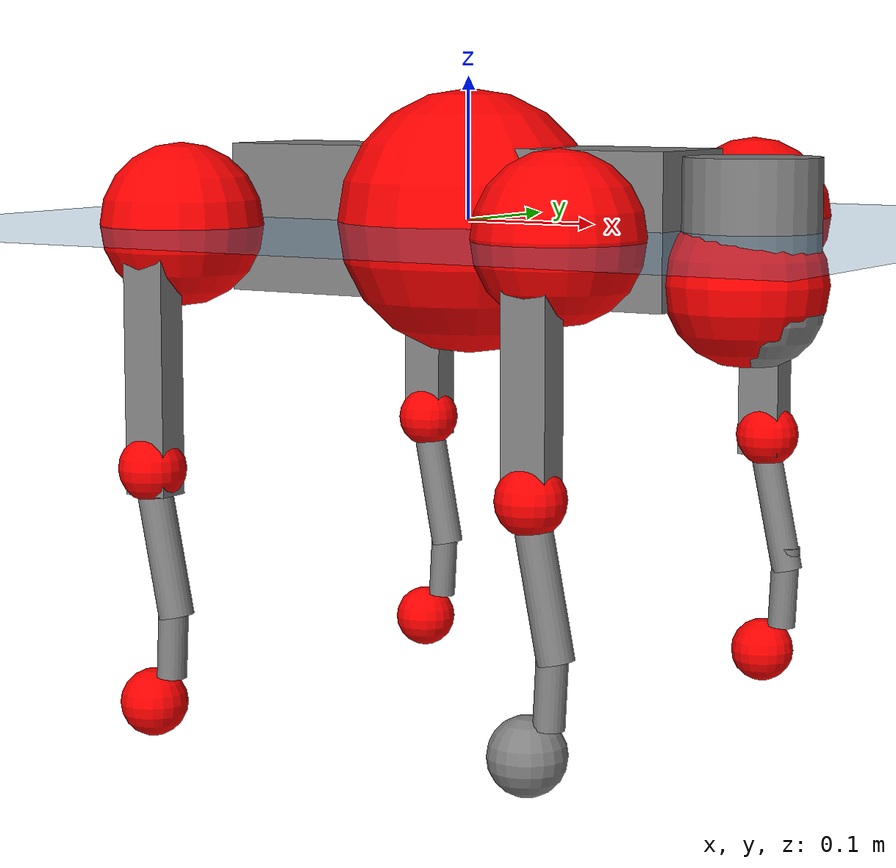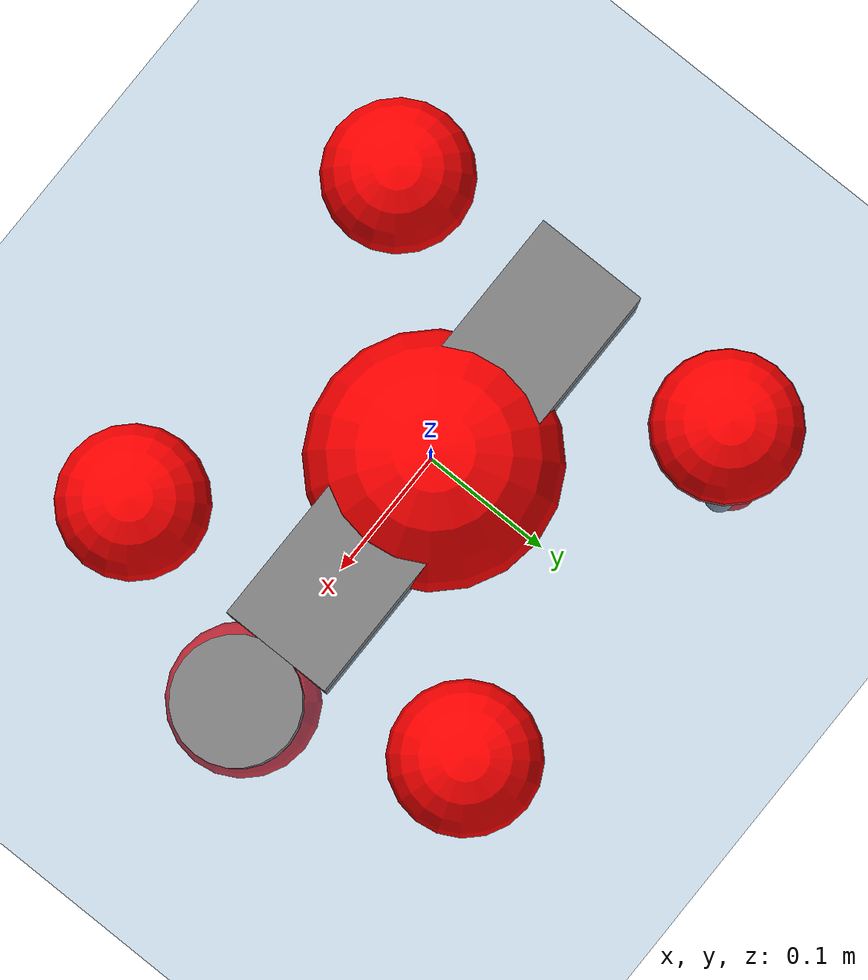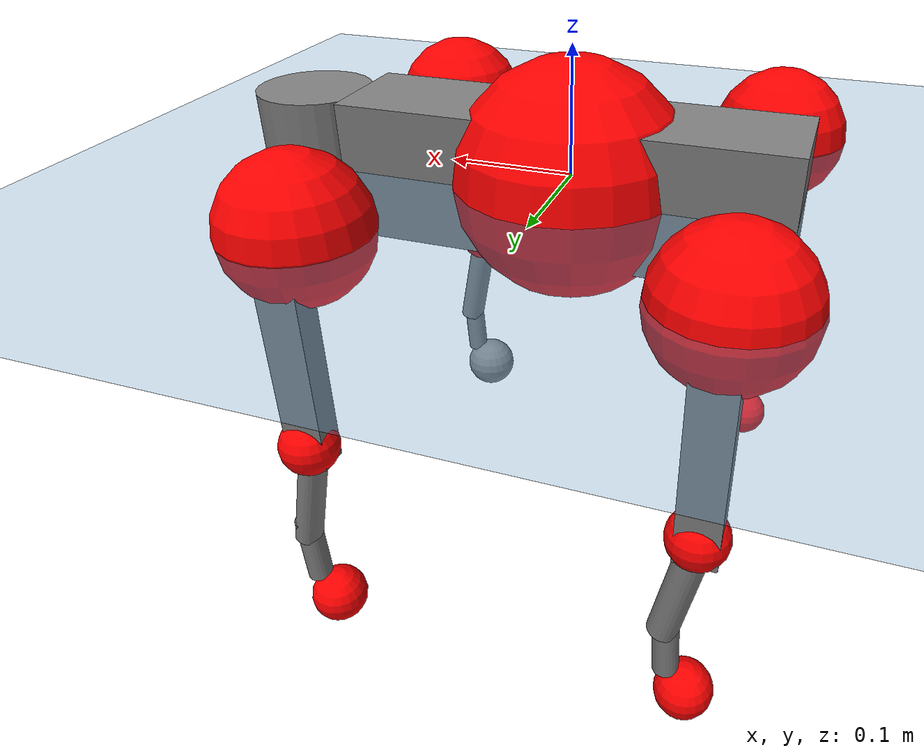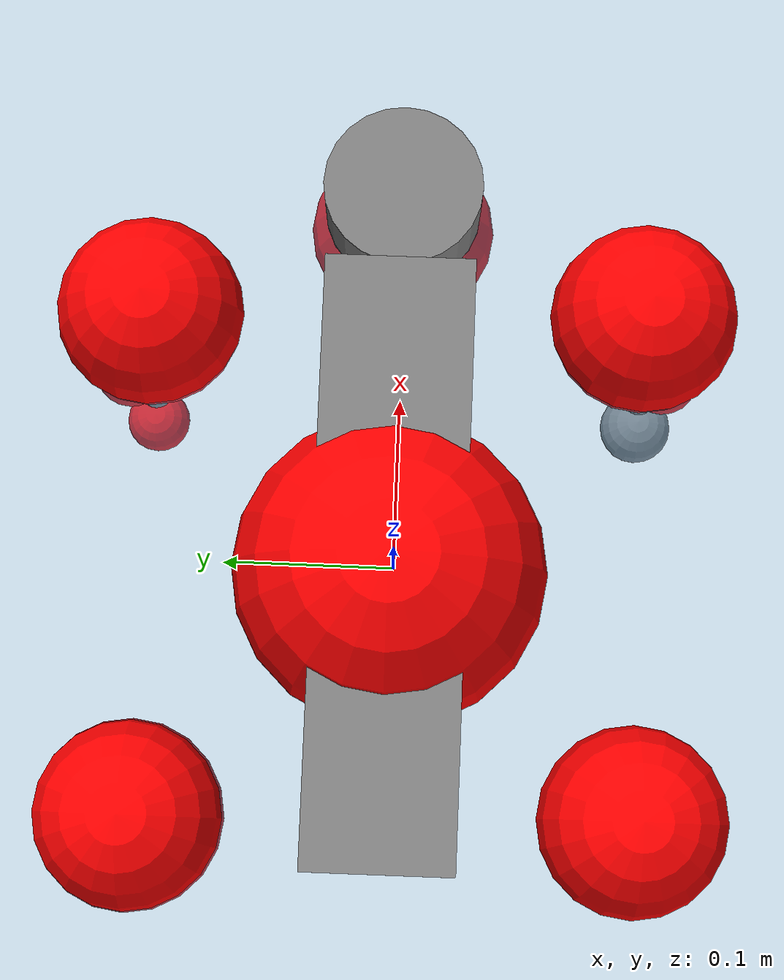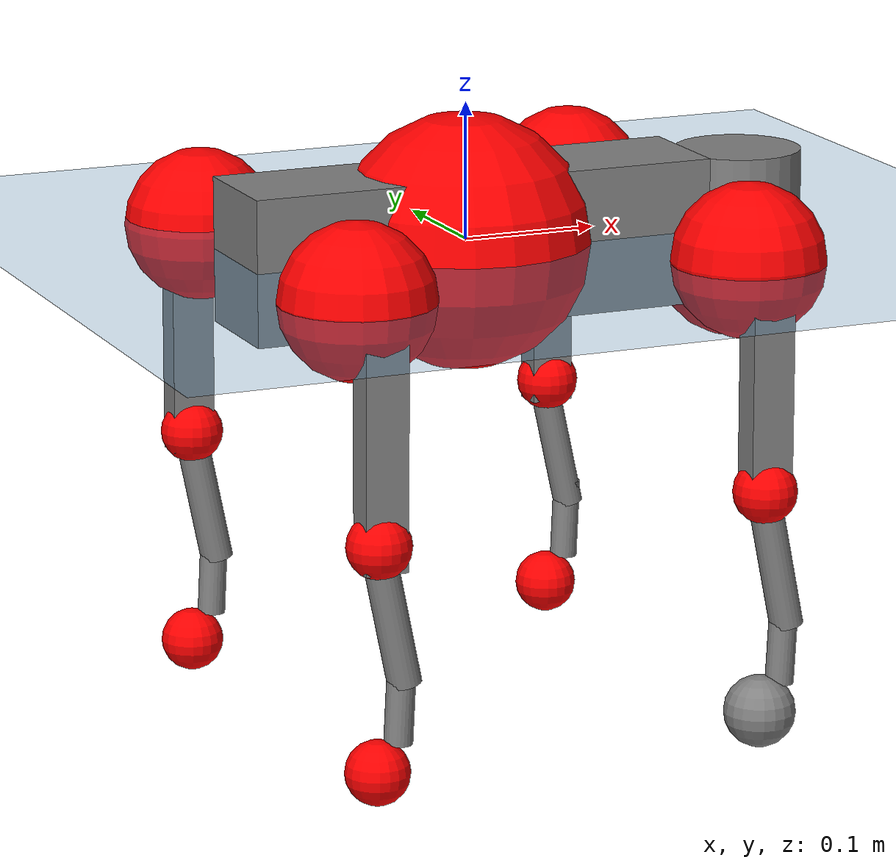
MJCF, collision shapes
<mujoco model="go2">
  <compiler angle="radian" assetdir="assets" balanceinertia="true" inertiafromgeom="false"/>

  <option timestep="0.005" density="1.2" viscosity="2e-05"/>

  <size nkey="1"/>

  <visual>
    <quality shadowsize="8192"/>
    <map shadowclip="0.5"/>
  </visual>

  <default>
    <default class="/">
      <geom contype="0" conaffinity="0" group="1" solref="-1000 -80"/>
      <site size="0.01 0.005 0.005" group="5"/>
      <general forcelimited="true" biastype="affine" gainprm="20" biasprm="0 -20 -0.5"/>
      <default class="go2">
        <joint armature="0.01" damping="0.01" frictionloss="0.2"/>
        <geom condim="1" margin="0.001"/>
        <default class="visual">
          <geom type="mesh" group="2"/>
        </default>
        <default class="collision">
          <geom group="3"/>
          <default class="foot">
            <geom size="0.022 0 0" condim="6" priority="1" friction="0.8 0.02 0.01" solimp="0.015 1 0.022"/>
          </default>
        </default>
        <default class="reward_collision_sphere">
          <geom group="5" rgba="1 0 0 1"/>
        </default>
      </default>
    </default>
  </default>

  <asset>
    <texture type="skybox" colorspace="auto" name="//unnamed_texture_0" builtin="gradient" rgb1="0.95 0.95 0.95" rgb2="0.95 0.95 0.95" width="100" height="600"/>
    <texture type="2d" colorspace="auto" name="texplane" builtin="checker" rgb1="0.345 0.575 0.748" rgb2="0.345 0.575 0.748" markrgb="1 1 1" width="512" height="512"/>
    <material name="MatPlane" class="/" texture="texplane" texuniform="true" texrepeat="2 2" specular="0.9"/>
    <material name="metal" class="/" rgba="0.9 0.95 0.95 1"/>
    <material name="black" class="/" rgba="0 0 0 1"/>
    <material name="white" class="/"/>
    <material name="gray" class="/" rgba="0.671705 0.692426 0.77427 1"/>
    <mesh name="base_0" class="/" file="base_0.obj"/>
    <mesh name="base_1" class="/" file="base_1.obj"/>
    <mesh name="base_2" class="/" file="base_2.obj"/>
    <mesh name="base_3" class="/" file="base_3.obj"/>
    <mesh name="base_4" class="/" file="base_4.obj"/>
    <mesh name="hip_0" class="/" file="hip_0.obj"/>
    <mesh name="hip_1" class="/" file="hip_1.obj"/>
    <mesh name="thigh_0" class="/" file="thigh_0.obj"/>
    <mesh name="thigh_1" class="/" file="thigh_1.obj"/>
    <mesh name="thigh_mirror_0" class="/" file="thigh_mirror_0.obj"/>
    <mesh name="thigh_mirror_1" class="/" file="thigh_mirror_1.obj"/>
    <mesh name="calf_0" class="/" file="calf_0.obj"/>
    <mesh name="calf_1" class="/" file="calf_1.obj"/>
    <mesh name="calf_mirror_0" class="/" file="calf_mirror_0.obj"/>
    <mesh name="calf_mirror_1" class="/" file="calf_mirror_1.obj"/>
    <mesh name="foot" class="/" file="foot.obj"/>
  </asset>

  <worldbody>
    <geom name="floor" class="/" size="100 100 0.125" type="plane" group="0" material="MatPlane"/>
    <light name="toplight_shadow" class="/" pos="0 0 5" dir="0.0990148 0.0990148 -0.990148" type="directional" ambient="0.04 0.04 0.04" diffuse="0.55 0.55 0.55" specular="0.12 0.12 0.12"/>
    <light name="toplight_fill" class="/" pos="0 0 5" dir="0.0990148 0.0990148 -0.990148" type="directional" castshadow="false" ambient="0.04 0.04 0.04" diffuse="0.3 0.3 0.3" specular="0.08 0.08 0.08"/>
    <body name="trunk" childclass="go2" pos="-0.000625703 0.00239494 -0.00123368" quat="0.999999 -0.00120897 7.45487e-05 0.000184276">
      <inertial pos="0.0172654 0.00707963 -0.00697952" quat="0.00296761 0.710346 -0.00192079 0.703844" mass="5.78527" diaginertia="0.033647 0.334233 0.00661168"/>
      <joint name="//unnamed_joint_0" type="free" armature="0" damping="0" frictionloss="0"/>
      <geom name="//unnamed_geom_1" class="visual" material="black" mesh="base_0"/>
      <geom name="//unnamed_geom_2" class="visual" material="black" mesh="base_1"/>
      <geom name="//unnamed_geom_3" class="visual" material="black" mesh="base_2"/>
      <geom name="//unnamed_geom_4" class="visual" material="white" mesh="base_3"/>
      <geom name="//unnamed_geom_5" class="visual" material="gray" mesh="base_4"/>
      <geom name="trunk_1" class="collision" size="0.175109 0.0435214 0.0530635" type="box"/>
      <geom name="trunk_2" class="collision" size="0.0465469 0.0418922" pos="0.218778 0 0.00765789" type="cylinder"/>
      <geom name="trunk_3" class="collision" size="0.0437541" pos="0.22492 0 -0.0459473"/>
      <geom name="//unnamed_geom_9" class="reward_collision_sphere" size="0.0930938"/>
      <geom name="//unnamed_geom_10" class="reward_collision_sphere" size="0.0558563" pos="0.21494 0 -0.0344605"/>
      <site name="imu" pos="-0.0305857 0.00901471 0.0413578" size="0.00930938"/>
      <camera name="track" pos="0 -2.51876 0" quat="0.707107 0.707107 0 0" mode="trackcom"/>
      <camera name="ego_camera" pos="0.239505 0 0.0344605" quat="-0.5 -0.5 0.5 0.5"/>
      <body name="FL_hip" pos="0.149622 0.0601421 0.00196044" quat="0.999999 0.000705939 -0.000725987 0.000326014">
        <inertial pos="-0.00477611 0.00686817 0.00198537" quat="0.508761 0.504591 0.522099 0.462561" mass="0.568345" diaginertia="0.000235839 0.00194149 0.000126943"/>
        <joint name="FL_hip_joint" pos="0 0 0" axis="0.99997 -0.00563365 0.00528263" range="-1.03082 1.0033" armature="0.0088237" damping="0.0242414" frictionloss="0.185001"/>
        <geom name="//unnamed_geom_11" class="visual" material="metal" mesh="hip_0"/>
        <geom name="//unnamed_geom_12" class="visual" material="gray" mesh="hip_1"/>
        <geom name="//unnamed_geom_13" class="collision" size="0.0428231 0.0186188" pos="0 0.100751 0" quat="0.707107 0.707107 0 0" type="cylinder"/>
        <geom name="//unnamed_geom_14" class="reward_collision_sphere" size="0.0558563" pos="0 0.0881567 0"/>
        <body name="FL_thigh" pos="-0.00405368 0.119409 0.00163404" quat="0.999993 -0.00140418 -0.00115148 0.00328888">
          <inertial pos="-0.00462567 -0.0356287 -0.0271411" quat="0.82915 0.0831286 -0.019584 0.552464" mass="0.920799" diaginertia="0.00169348 0.0169387 0.000231671"/>
          <joint name="FL_thigh_joint" pos="0 0 0" axis="-0.0111024 0.999912 -0.00722637" range="-1.51929 3.61195" armature="0.00607111" damping="0.0231425" frictionloss="0.197238"/>
          <geom name="//unnamed_geom_15" class="visual" material="metal" mesh="thigh_0"/>
          <geom name="//unnamed_geom_16" class="visual" material="gray" mesh="thigh_1"/>
          <geom name="//unnamed_geom_17" class="collision" size="0.0991449 0.011404 0.0158259" pos="0 0 -0.0815565" quat="0.707107 0 0.707107 0" type="box"/>
          <body name="FL_calf" pos="0.00171812 0.00213363 -0.166593" quat="1 9.08478e-05 0.000528902 -0.000804097">
            <inertial pos="0.0101382 0.00111056 -0.10418" quat="0.708766 -0.00109354 -0.00561215 0.70542" mass="0.201851" diaginertia="0.000403976 0.00439201 1.39465e-05"/>
            <joint name="FL_calf_joint" pos="0 0 0" axis="-0.000523773 1 0.000529377" range="-2.8742 -0.917766" armature="0.00987359" damping="0.0304702" frictionloss="0.19621"/>
            <geom name="//unnamed_geom_18" class="visual" material="gray" mesh="calf_0"/>
            <geom name="//unnamed_geom_19" class="visual" material="black" mesh="calf_1"/>
            <geom name="FL_calf0" class="collision" size="0.0111713 0.0558563" pos="0.00614115 0 -0.0459473" quat="0.994493 0 -0.104807 0" type="cylinder"/>
            <geom name="//unnamed_geom_21" class="collision" size="0.0102403 0.0302555" pos="0.0153529 0 -0.113337" quat="0.999688 0 0.0249974 0" type="cylinder"/>
            <geom name="//unnamed_geom_22" class="visual" pos="0 0 -0.163113" quat="1 0 0 0" material="black" mesh="foot"/>
            <geom name="FL_foot" class="foot" size="0.0206919" pos="-0.00153529 0 -0.163113"/>
            <geom name="//unnamed_geom_24" class="reward_collision_sphere" size="0.0232735"/>
            <geom name="//unnamed_geom_25" class="reward_collision_sphere" size="0.0232735" pos="-0.00153529 0 -0.163113"/>
            <site name="FL_foot" class="foot" pos="-0.00153529 0 -0.163113" size="0.00930938"/>
          </body>
        </body>
      </body>
      <body name="FR_hip" pos="0.155662 -0.0578398 0.0021935" quat="0.999999 0.000325139 -0.000102101 0.0012122">
        <inertial pos="-0.00620098 -0.00178341 -0.000759081" quat="0.509815 0.504299 0.510822 0.474165" mass="0.548569" diaginertia="0.000246557 0.00188565 0.000129084"/>
        <joint name="FR_hip_joint" pos="0 0 0" axis="0.999971 -0.000683534 0.00754726" stiffness="0.0410945" range="-1.00387 0.95169" armature="0.00927382" damping="0.027556" frictionloss="0.199819"/>
        <geom name="//unnamed_geom_26" class="visual" pos="0 4.29998e-09 1.84435e-07" quat="4.63268e-05 1 0 0" material="metal" mesh="hip_0"/>
        <geom name="//unnamed_geom_27" class="visual" pos="0 6.97078e-09 -4.56178e-07" quat="4.63268e-05 1 0 0" material="gray" mesh="hip_1"/>
        <geom name="//unnamed_geom_28" class="collision" size="0.0428231 0.0186188" pos="0 -0.100751 0" quat="0.707107 0.707107 0 0" type="cylinder"/>
        <geom name="//unnamed_geom_29" class="reward_collision_sphere" size="0.0558563" pos="0 -0.0881567 0"/>
        <body name="FR_thigh" pos="-0.00053814 -0.120013 0.00691427" quat="1 -0.000224242 -0.000154295 0.000203324">
          <inertial pos="-0.0035877 0.0302192 -0.0311384" quat="0.551349 -0.0238663 0.0861694 0.829469" mass="0.954446" diaginertia="0.00164861 0.0187201 0.000234"/>
          <joint name="FR_thigh_joint" pos="0 0 0" axis="0.00193148 -0.999996 -0.0019338" range="-3.51814 1.58632" armature="0.0116152" damping="0" frictionloss="0.203441"/>
          <geom name="//unnamed_geom_30" class="visual" material="metal" mesh="thigh_mirror_0"/>
          <geom name="//unnamed_geom_31" class="visual" material="gray" mesh="thigh_mirror_1"/>
          <geom name="//unnamed_geom_32" class="collision" size="0.0991449 0.011404 0.0158259" pos="0 0 -0.0815565" quat="0.707107 0 0.707107 0" type="box"/>
          <body name="FR_calf" pos="-0.000105751 -0.00038626 -0.168148" quat="0.999999 -5.62033e-05 0.000925705 -0.000507387">
            <inertial pos="0.00673747 -0.0014925 -0.107621" quat="0.703656 -0.00437515 0.000598443 0.710528" mass="0.176874" diaginertia="0.000358352 0.00405979 1.29726e-05"/>
            <joint name="FR_calf_joint" pos="0 0 0" axis="-0.0113977 -0.999876 0.0108747" range="0.860075 2.75242" armature="0.00834749" damping="0.0386253" frictionloss="0.179713"/>
            <geom name="//unnamed_geom_33" class="visual" material="gray" mesh="calf_mirror_0"/>
            <geom name="//unnamed_geom_34" class="visual" material="black" mesh="calf_mirror_1"/>
            <geom name="FR_calf0" class="collision" size="0.0121022 0.0558563" pos="0.00767643 0 -0.0459473" quat="0.995004 0 -0.0998334 0" type="cylinder"/>
            <geom name="//unnamed_geom_36" class="collision" size="0.0102403 0.0302555" pos="0.0153529 0 -0.113337" quat="0.999688 0 0.0249974 0" type="cylinder"/>
            <geom name="//unnamed_geom_37" class="visual" pos="0 0 -0.163113" quat="1 0 0 0" material="black" mesh="foot"/>
            <geom name="FR_foot" class="foot" size="0.0260586" pos="-0.00153529 0 -0.163113"/>
            <geom name="//unnamed_geom_39" class="reward_collision_sphere" size="0.0232735"/>
            <geom name="//unnamed_geom_40" class="reward_collision_sphere" size="0.0232735" pos="-0.00153529 0 -0.163113"/>
            <site name="FR_foot" class="foot" pos="-0.00153529 0 -0.163113" size="0.00930938"/>
          </body>
        </body>
      </body>
      <body name="RL_hip" pos="-0.148088 0.0576929 -0.00472782" quat="0.999999 0.000361225 0.000876787 -0.000534441">
        <inertial pos="0.00606195 0.0006493 -0.00192521" quat="0.51194 0.500245 0.491468 0.496116" mass="0.595955" diaginertia="0.000228109 0.00189011 0.000123606"/>
        <joint name="RL_hip_joint" pos="0 0 0" axis="-0.999969 0.00777002 -0.00108887" range="-1.14276 1.03044" armature="0.00843295" damping="0.00661994" frictionloss="0.152482"/>
        <geom name="//unnamed_geom_41" class="visual" pos="-1.61569e-11 0 -3.16711e-09" quat="4.63268e-05 0 1 0" material="metal" mesh="hip_0"/>
        <geom name="//unnamed_geom_42" class="visual" pos="-2.61922e-11 0 -2.80877e-09" quat="4.63268e-05 0 1 0" material="gray" mesh="hip_1"/>
        <geom name="//unnamed_geom_43" class="collision" size="0.0428231 0.0186188" pos="0 0.100751 0" quat="0.707107 0.707107 0 0" type="cylinder"/>
        <geom name="//unnamed_geom_44" class="reward_collision_sphere" size="0.0558563" pos="0 0.0881567 0"/>
        <body name="RL_thigh" pos="0.00086972 0.120234 0.000871613" quat="0.999995 -0.0021224 0.00213591 0.000489227">
          <inertial pos="-0.00271854 -0.0363209 -0.0242935" quat="0.821966 0.087811 -0.0320793 0.561811" mass="1.01658" diaginertia="0.00161755 0.0183186 0.000217425"/>
          <joint name="RL_thigh_joint" pos="0 0 0" axis="-0.0021212 0.99928 0.0378681" range="-0.570849 4.50608" armature="0.0082817" damping="0" frictionloss="0.197562"/>
          <geom name="//unnamed_geom_45" class="visual" material="metal" mesh="thigh_0"/>
          <geom name="//unnamed_geom_46" class="visual" material="gray" mesh="thigh_1"/>
          <geom name="//unnamed_geom_47" class="collision" size="0.0991449 0.011404 0.0158259" pos="0 0 -0.0815565" quat="0.707107 0 0.707107 0" type="box"/>
          <body name="RL_calf" pos="0.0010205 -0.00263207 -0.166622" quat="1 -0.000103854 0.000342941 0.000262613">
            <inertial pos="0.0057483 -0.00521597 -0.110454" quat="0.71089 0.0110942 -0.00493923 0.703199" mass="0.196921" diaginertia="0.000423292 0.0049543 1.50547e-05"/>
            <joint name="RL_calf_joint" pos="0 0 0" axis="0.00192737 0.999986 -0.00493287" range="-2.86545 -0.836055" armature="0.00581783" damping="0" frictionloss="0.205675"/>
            <geom name="//unnamed_geom_48" class="visual" material="gray" mesh="calf_0"/>
            <geom name="//unnamed_geom_49" class="visual" material="black" mesh="calf_1"/>
            <geom name="RL_calf0" class="collision" size="0.0121022 0.0558563" pos="0.00767643 0 -0.0459473" quat="0.995004 0 -0.0998334 0" type="cylinder"/>
            <geom name="//unnamed_geom_51" class="collision" size="0.0102403 0.0302555" pos="0.0153529 0 -0.113337" quat="0.999688 0 0.0249974 0" type="cylinder"/>
            <geom name="//unnamed_geom_52" class="visual" pos="0 0 -0.163113" quat="1 0 0 0" material="black" mesh="foot"/>
            <geom name="RL_foot" class="foot" size="0.0228865" pos="-0.00153529 0 -0.163113"/>
            <geom name="//unnamed_geom_54" class="reward_collision_sphere" size="0.0232735"/>
            <geom name="//unnamed_geom_55" class="reward_collision_sphere" size="0.0232735" pos="-0.00153529 0 -0.163113"/>
            <site name="RL_foot" class="foot" pos="-0.00153529 0 -0.163113" size="0.00930938"/>
          </body>
        </body>
      </body>
      <body name="RR_hip" pos="-0.1415 -0.0577613 0.00123139" quat="0.999992 0.00204389 0.0024673 0.00244403">
        <inertial pos="0.00588055 -0.0036374 -0.00181566" quat="0.498125 0.497565 0.498165 0.506095" mass="0.555442" diaginertia="0.000237749 0.00193235 0.000114383"/>
        <joint name="RR_hip_joint" pos="0 0 0" axis="-0.999965 0.00364021 -0.00747491" range="-1.08763 0.996794" armature="0.00656097" damping="0.00709496" frictionloss="0.169701"/>
        <geom name="//unnamed_geom_56" class="visual" pos="3.31811e-11 4.29998e-09 -1.87602e-07" quat="2.14617e-09 4.63268e-05 4.63268e-05 -1" material="metal" mesh="hip_0"/>
        <geom name="//unnamed_geom_57" class="visual" pos="-1.59157e-11 6.97078e-09 4.5337e-07" quat="2.14617e-09 4.63268e-05 4.63268e-05 -1" material="gray" mesh="hip_1"/>
        <geom name="//unnamed_geom_58" class="collision" size="0.0428231 0.0186188" pos="0 -0.100751 0" quat="0.707107 0.707107 0 0" type="cylinder"/>
        <geom name="//unnamed_geom_59" class="reward_collision_sphere" size="0.0558563" pos="0 -0.0881567 0"/>
        <body name="RR_thigh" pos="0.00250879 -0.124271 -0.00111729" quat="1 -9.62615e-05 8.02302e-05 -0.000101253">
          <inertial pos="-0.00373755 0.0315336 -0.0263647" quat="0.547421 -0.0107811 0.0813869 0.83282" mass="0.966966" diaginertia="0.0015781 0.0186104 0.000243531"/>
          <joint name="RR_thigh_joint" pos="0 0 0" axis="-0.00163995 -0.999963 -0.00842549" range="-4.50458 0.370395" armature="0.0125912" damping="0" frictionloss="0.167773"/>
          <geom name="//unnamed_geom_60" class="visual" material="metal" mesh="thigh_mirror_0"/>
          <geom name="//unnamed_geom_61" class="visual" material="gray" mesh="thigh_mirror_1"/>
          <geom name="//unnamed_geom_62" class="collision" size="0.0991449 0.011404 0.0158259" pos="0 0 -0.0815565" quat="0.707107 0 0.707107 0" type="box"/>
          <body name="RR_calf" pos="-0.00171341 -0.000584907 -0.163092" quat="0.999999 -0.000202548 -0.00129295 9.54635e-06">
            <inertial pos="0.0060788 0.00313601 -0.107337" quat="0.701478 -0.00532239 -0.000153649 0.712671" mass="0.187223" diaginertia="0.000400706 0.00456638 1.34929e-05"/>
            <joint name="RR_calf_joint" pos="0 0 0" axis="0.0124196 -0.99982 0.0143311" stiffness="0.00557776" range="0.731425 2.71351" armature="0.00863927" damping="0.0008608" frictionloss="0.175797"/>
            <geom name="//unnamed_geom_63" class="visual" material="gray" mesh="calf_mirror_0"/>
            <geom name="//unnamed_geom_64" class="visual" material="black" mesh="calf_mirror_1"/>
            <geom name="RR_calf0" class="collision" size="0.0121022 0.0558563" pos="0.00767643 0 -0.0459473" quat="0.995004 0 -0.0998334 0" type="cylinder"/>
            <geom name="//unnamed_geom_66" class="collision" size="0.0102403 0.0302555" pos="0.0153529 0 -0.113337" quat="0.999688 0 0.0249974 0" type="cylinder"/>
            <geom name="//unnamed_geom_67" class="visual" pos="0 0 -0.163113" quat="1 0 0 0" material="black" mesh="foot"/>
            <geom name="RR_foot" class="foot" size="0.0142588" pos="-0.00153529 0 -0.163113"/>
            <geom name="//unnamed_geom_69" class="reward_collision_sphere" size="0.0232735"/>
            <geom name="//unnamed_geom_70" class="reward_collision_sphere" size="0.0232735" pos="-0.00153529 0 -0.163113"/>
            <site name="RR_foot" class="foot" pos="-0.00153529 0 -0.163113" size="0.00930938"/>
          </body>
        </body>
      </body>
    </body>
  </worldbody>

  <contact>
    <pair class="/" geom1="floor" geom2="FL_foot" name="//unnamed_contact_0"/>
    <pair class="/" geom1="floor" geom2="FR_foot" name="//unnamed_contact_1"/>
    <pair class="/" geom1="floor" geom2="RL_foot" name="//unnamed_contact_2"/>
    <pair class="/" geom1="floor" geom2="RR_foot" name="//unnamed_contact_3"/>
  </contact>

  <actuator>
    <general name="FL_hip" class="/" joint="FL_hip_joint" forcerange="-21.794 21.794" gainprm="18.3281" biasprm="0 -18.3281 -0.484815"/>
    <general name="FL_thigh" class="/" joint="FL_thigh_joint" forcerange="-22.6039 22.6039" gainprm="18.3281" biasprm="0 -18.3281 -0.484815"/>
    <general name="FL_calf" class="/" joint="FL_calf_joint" forcerange="-44.7284 44.7284" gainprm="18.3281" biasprm="0 -18.3281 -0.484815"/>
    <general name="FR_hip" class="/" joint="FR_hip_joint" forcerange="-22.6218 22.6218" gainprm="18.3281" biasprm="0 -18.3281 -0.484815"/>
    <general name="FR_thigh" class="/" joint="FR_thigh_joint" forcerange="-20.7857 20.7857" gainprm="18.3281" biasprm="0 -18.3281 -0.484815"/>
    <general name="FR_calf" class="/" joint="FR_calf_joint" forcerange="-47.2559 47.2559" gainprm="18.3281" biasprm="0 -18.3281 -0.484815"/>
    <general name="RL_hip" class="/" joint="RL_hip_joint" forcerange="-21.2442 21.2442" gainprm="18.3281" biasprm="0 -18.3281 -0.484815"/>
    <general name="RL_thigh" class="/" joint="RL_thigh_joint" forcerange="-21.2888 21.2888" gainprm="18.3281" biasprm="0 -18.3281 -0.484815"/>
    <general name="RL_calf" class="/" joint="RL_calf_joint" forcerange="-45.045 45.045" gainprm="18.3281" biasprm="0 -18.3281 -0.484815"/>
    <general name="RR_hip" class="/" joint="RR_hip_joint" forcerange="-22.466 22.466" gainprm="18.3281" biasprm="0 -18.3281 -0.484815"/>
    <general name="RR_thigh" class="/" joint="RR_thigh_joint" forcerange="-22.5647 22.5647" gainprm="18.3281" biasprm="0 -18.3281 -0.484815"/>
    <general name="RR_calf" class="/" joint="RR_calf_joint" forcerange="-33.3308 33.3308" gainprm="18.3281" biasprm="0 -18.3281 -0.484815"/>
  </actuator>

  <sensor>
    <gyro site="imu" name="imu_angular_velocity"/>
    <velocimeter site="imu" name="imu_linear_velocity"/>
    <framelinvel objtype="site" objname="FL_foot" name="FL_foot_global_linear_velocity"/>
    <framelinvel objtype="site" objname="FR_foot" name="FR_foot_global_linear_velocity"/>
    <framelinvel objtype="site" objname="RL_foot" name="RL_foot_global_linear_velocity"/>
    <framelinvel objtype="site" objname="RR_foot" name="RR_foot_global_linear_velocity"/>
  </sensor>

  <keyframe>
    <key name="home" qpos="0 0 0.325 1 0 0 0 0.1 0.8 -1.5 -0.1 -0.8 1.5 -0.1 0.8 -1.5 0.1 -0.8 1.5"/>
  </keyframe>
</mujoco>
